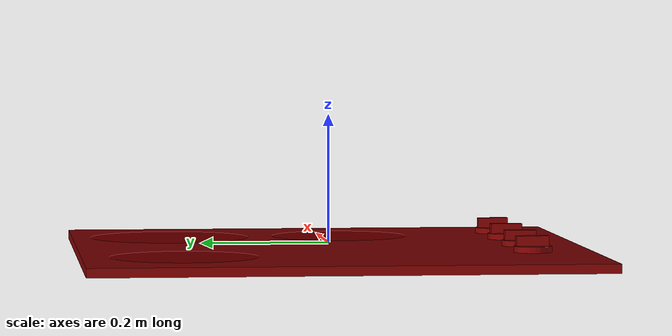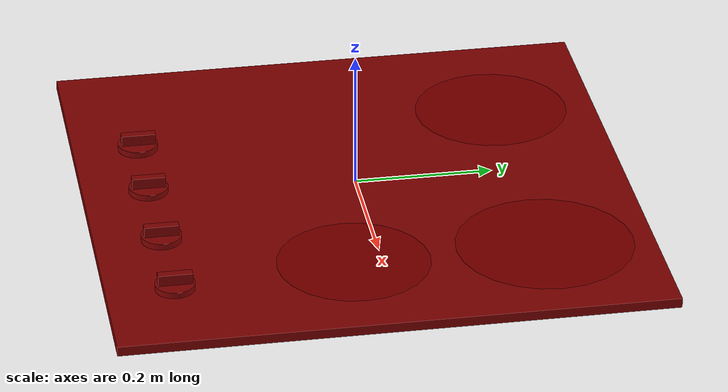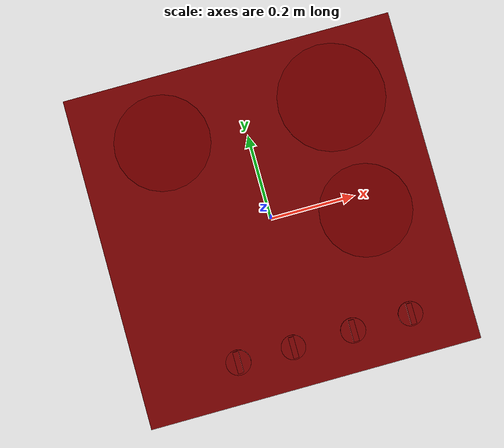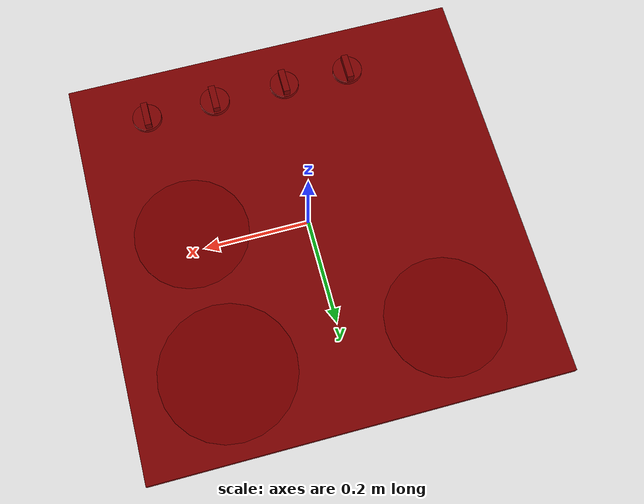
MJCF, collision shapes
<?xml version='1.0' encoding='UTF-8'?>
<mujoco model="model">
  <compiler angle="radian"/>
  <asset>
    <mesh file="visuals/knob_front_left.obj" name="knob_front_left_vis"/>
    <mesh file="visuals/knob_front_right.obj" name="knob_front_right_vis"/>
    <mesh file="visuals/knob_rear_left.obj" name="knob_rear_left_vis"/>
    <mesh file="visuals/knob_rear_right.obj" name="knob_rear_right_vis"/>
    <mesh file="visuals/Body001.obj" name="Body001_vis"/>
    <texture file="visuals/T_BC001.png" name="Body001_material" type="2d"/>
    <material name="Body001_material" rgba="1 1 1 1.0" texture="Body001_material" shininess="5" specular="5"/>
    <texture file="visuals/T_BC001.png" name="knob_front_left_material" type="2d"/>
    <material name="knob_front_left_material" rgba="1 1 1 1.0" texture="knob_front_left_material" shininess="5" specular="5"/>
    <texture file="visuals/T_BC001.png" name="knob_front_right_material" type="2d"/>
    <material name="knob_front_right_material" rgba="1 1 1 1.0" texture="knob_front_right_material" shininess="5" specular="5"/>
    <texture file="visuals/T_BC001.png" name="knob_rear_left_material" type="2d"/>
    <material name="knob_rear_left_material" rgba="1 1 1 1.0" texture="knob_rear_left_material" shininess="5" specular="5"/>
    <texture file="visuals/T_BC001.png" name="knob_rear_right_material" type="2d"/>
    <material name="knob_rear_right_material" rgba="1 1 1 1.0" texture="knob_rear_right_material" shininess="5" specular="5"/>
  </asset>
  <default>
    <default class="visual">
      <geom conaffinity="0" contype="0" group="1" type="mesh"/>
    </default>
    <default class="collision">
      <geom group="0" rgba="0.5 0 0 0.5"/>
    </default>
    <default class="spawn">
      <geom group="0" rgba="1 1 1 0.5" contype="0" conaffinity="0"/>
      <site group="0" rgba="1 1 1 0.5"/>
    </default>
    <default class="region">
      <geom group="1" conaffinity="0" contype="0" rgba="0 1 0 0"/>
    </default>
  </default>
  <worldbody>
    <body>
      <body name="object">
        <site type="cylinder" rgba="0.5 0 0 0.5" size="0.12766821682453156 4.999999873689376e-05" pos="0.2120876908302307 0.23648498952388763 -0.00562885869294405" name="burner_on_rear_right"/>
        <site type="cylinder" rgba="0.5 0 0 0.5" size="0.1093711331486702 4.999999873689376e-05" pos="0.21788763999938965 -0.03862502798438072 -0.005618675146251917" name="burner_on_front_right"/>
        <site type="cylinder" rgba="0.5 0 0 0.5" size="0.12754933536052704 4.999999873689376e-05" pos="-0.18798910081386566 -0.02872050739824772 -0.005757502280175686" name="burner_on_front_left"/>
        <site type="cylinder" rgba="0.5 0 0 0.5" size="0.11344067752361298 4.999999873689376e-05" pos="-0.1954837441444397 0.23831510543823242 -0.005638223607093096" name="burner_on_rear_left"/>
        <geom mesh="Body001_vis" type="mesh" solimp="0.998 0.998 0.001" solref="0.001 1" density="100" friction="0.95 0.3 0.1" class="visual" material="Body001_material"/>
        <geom class="collision" type="box" pos="0.0 -9.613397855545713e-10 -0.012829914689064026" size="0.39330095052719116 0.39330095052719116 0.0071288542822003365" quat="1.0 0.0 0.0 0.0"/>
        <body name="knob_front_left">
          <joint axis="0.0 0.0 1.0" pos="-0.15959760546684265 -0.29781341552734375 0.004379876423627138" limited="true" name="knob_front_left_joint" range="0.0 3.141592653589793" type="hinge" damping="0.05" armature="0.001" springref="-0.01"/>
          <geom mesh="knob_front_left_vis" type="mesh" solimp="0.998 0.998 0.001" solref="0.001 1" density="100" friction="0.95 0.3 0.1" class="visual" material="knob_front_left_material"/>
          <geom class="collision" type="box" pos="-0.15974116325378418 -0.2966524362564087 0.011575335636734962" size="0.006519583519548178 0.02513112872838974 0.008272312581539154" quat="1.0 0.0 0.0 0.0"/>
          <geom class="collision" type="cylinder" pos="-0.1598851978778839 -0.29782411456108093 -0.0005884533165954053" size="0.02927549183368683 0.004651724360883236" quat="1.0 -3.5527132552840273e-15 0.0 0.0"/>
        </body>
        <body name="knob_front_right">
          <joint axis="0.0 0.0 1.0" pos="0.2511397898197174 -0.2956247329711914 0.004379876423627138" limited="true" name="knob_front_right_joint" range="0.0 3.141592653589793" type="hinge" damping="0.05" armature="0.001" springref="-0.01"/>
          <geom mesh="knob_front_right_vis" type="mesh" solimp="0.998 0.998 0.001" solref="0.001 1" density="100" friction="0.95 0.3 0.1" class="visual" material="knob_front_right_material"/>
          <geom class="collision" type="box" pos="0.251102089881897 -0.29546546936035156 0.011488744057714939" size="0.006342458073049784 0.02444823831319809 0.008123430423438549" quat="1.0 0.0 0.0 0.0"/>
          <geom class="collision" type="cylinder" pos="0.2511170208454132 -0.2958422601222992 -0.0006728885346092284" size="0.028480106964707375 0.004435861948877573" quat="1.0 -3.5527130435257905e-15 0.0 0.0"/>
        </body>
        <body name="knob_rear_left">
          <joint axis="0.0 0.0 1.0" pos="-0.029064353555440903 -0.298065185546875 0.004379876423627138" limited="true" name="knob_rear_left_joint" range="0.0 3.141592653589793" type="hinge" damping="0.05" armature="0.001" springref="-0.01"/>
          <geom mesh="knob_rear_left_vis" type="mesh" solimp="0.998 0.998 0.001" solref="0.001 1" density="100" friction="0.95 0.3 0.1" class="visual" material="knob_rear_left_material"/>
          <geom class="collision" type="box" pos="-0.028956111520528793 -0.2978096604347229 0.011351747438311577" size="0.006354008335620165 0.02449280209839344 0.00813313852995634" quat="1.0 0.0 0.0 0.0"/>
          <geom class="collision" type="cylinder" pos="-0.029028242453932762 -0.2980884909629822 -0.0007754437974654138" size="0.02853200025856495 0.004449946340173483" quat="1.0 -3.5527132552840273e-15 0.0 0.0"/>
        </body>
        <body name="knob_rear_right">
          <joint axis="0.0 0.0 1.0" pos="0.11419481039047241 -0.2973874509334564 0.004379876423627138" limited="true" name="knob_rear_right_joint" range="0.0 3.141592653589793" type="hinge" damping="0.05" armature="0.001" springref="-0.01"/>
          <geom mesh="knob_rear_right_vis" type="mesh" solimp="0.998 0.998 0.001" solref="0.001 1" density="100" friction="0.95 0.3 0.1" class="visual" material="knob_rear_right_material"/>
          <geom class="collision" type="box" pos="0.11393211781978607 -0.29735609889030457 0.011200075969099998" size="0.00650397315621376 0.025070859119296074 0.008259191177785397" quat="1.0 0.0 0.0 0.0"/>
          <geom class="collision" type="cylinder" pos="0.1136954054236412 -0.2973831593990326 -0.0004593618505168706" size="0.029205402359366417 0.004632700700312853" quat="1.0 -3.5527132552840273e-15 0.0 0.0"/>
        </body>
        <geom class="region" name="reg_main" type="box" pos="-1.1414345912896806e-08 0.0 -0.012733331881463528" size="0.3912889361381531 0.3912889361381531 0.006649516988545656"/>
      </body>
    </body>
  </worldbody>
  <actuator>
    <motor name="knob_front_left_joint_actuator" joint="knob_front_left_joint" gear="10"/>
    <motor name="knob_front_right_joint_actuator" joint="knob_front_right_joint" gear="10"/>
    <motor name="knob_rear_left_joint_actuator" joint="knob_rear_left_joint" gear="10"/>
    <motor name="knob_rear_right_joint_actuator" joint="knob_rear_right_joint" gear="10"/>
  </actuator>
</mujoco>
